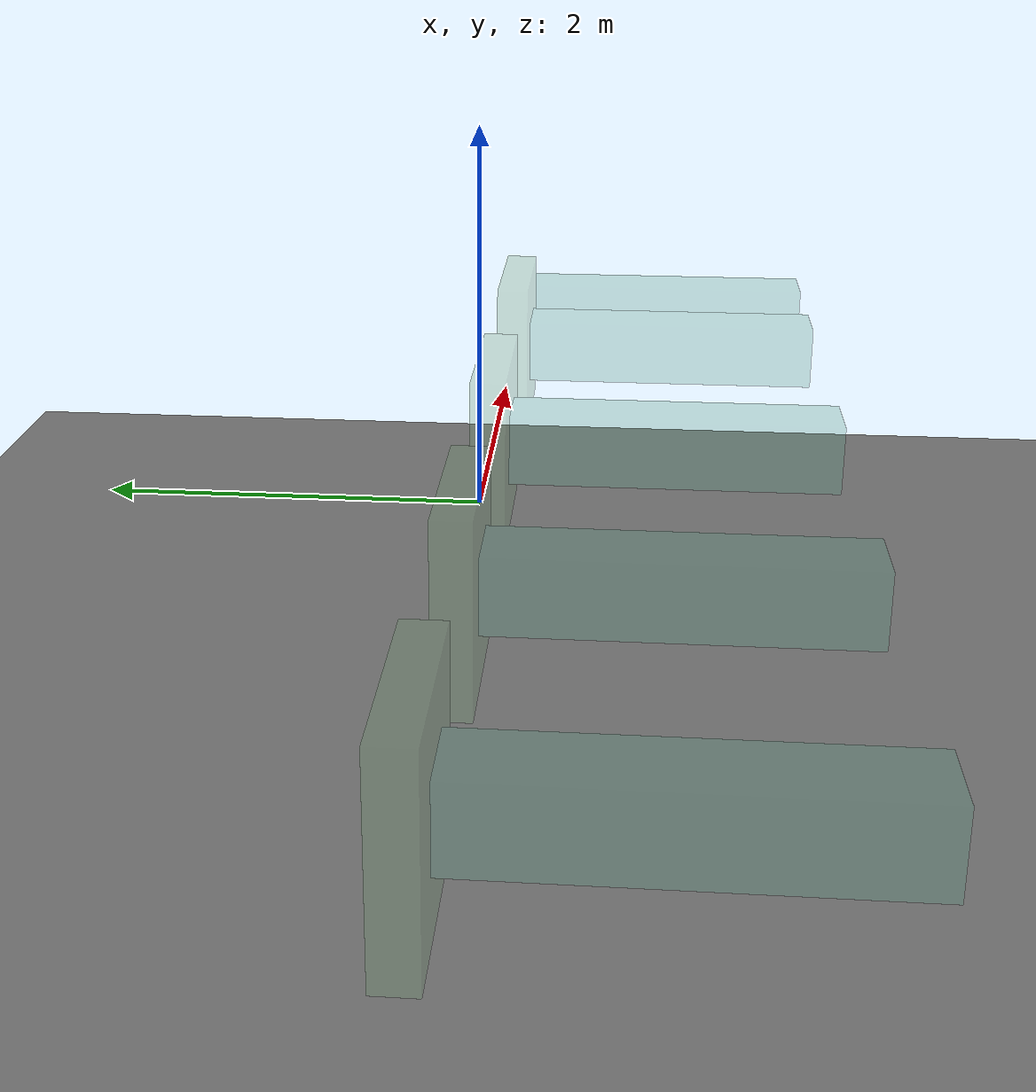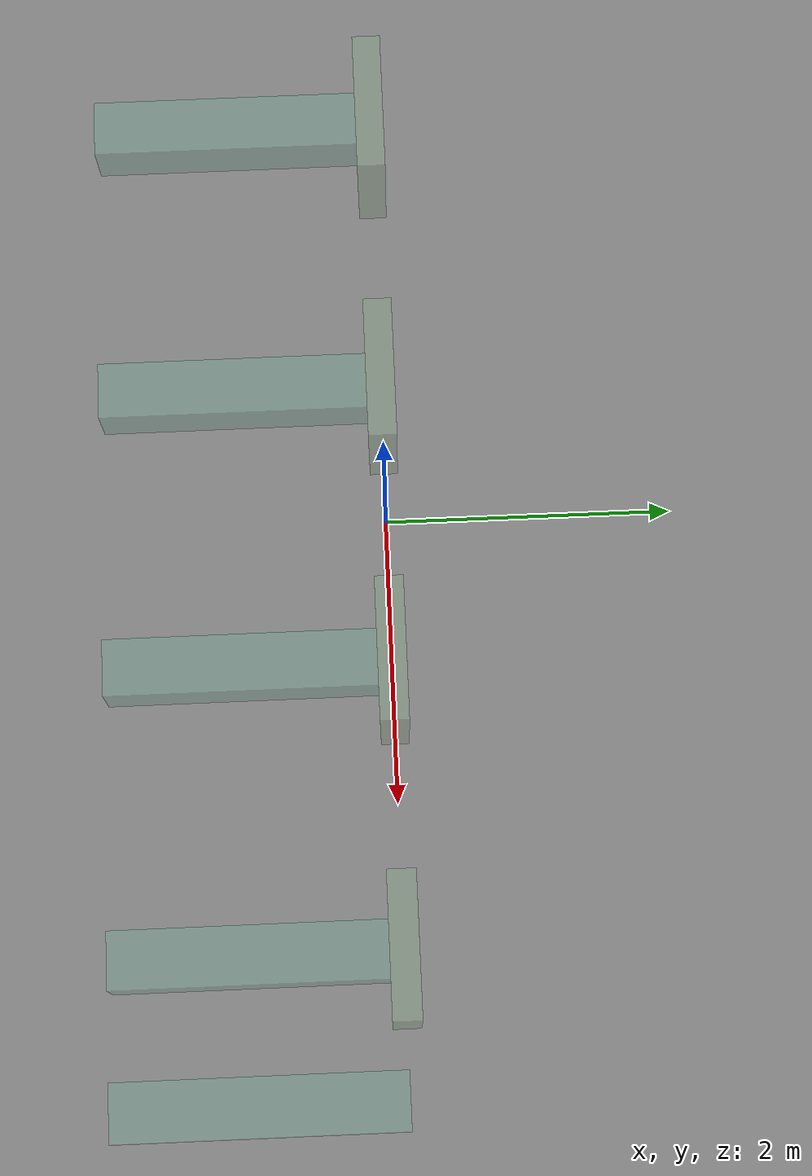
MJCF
<mujoco>
  <option solver="CG" iterations="8">
    <flag contact="disable"/>
  </option>

  <default>
    <default class="static">
      <geom size=".5 .1 .5" rgba=".5 .7 .5 .3"/>
    </default>
    <default class="free">
      <geom type="box" size=".2" fromto="0 0 0 0 -2 0" rgba=".4 .7 .6 .3"/>
    </default>
  </default>

  <worldbody>
    <geom pos="0 0 -2" type="plane" size="10 10 .01"/>
    <light pos="0 0 20"/>

    <body name="box1" pos="-3 0 0">
      <geom type="box" class="static"/>
    </body>
    <body name="beam1" pos="-3 0 0">
      <freejoint/>
      <geom class="free"/>
    </body>

    <body name="box2" pos="-1 0 0">
      <geom type="box" class="static"/>
    </body>
    <body name="beam2" pos="-1 0 0">
      <freejoint/>
      <geom class="free"/>
    </body>

    <body name="box3" pos="1 0 0">
      <geom type="box" class="static"/>
    </body>
    <body name="beam3" pos="1 0 0">
      <freejoint/>
      <geom class="free"/>
    </body>

    <body name="box4" pos="3 0 0">
      <geom type="box" class="static"/>
    </body>
    <body name="beam4" pos="3 0 0">
      <freejoint/>
      <geom class="free"/>
    </body>

    <body name="box5" pos="4 0 0">
      <geom class="free"/>
      <joint name="joint1" axis="1 0 0" type="hinge" />
    </body>

    <body name="box6" pos="4 0 0">
      <geom class="free"/>
      <joint name="joint2" axis="1 0 0" type="hinge" />
    </body>

  </worldbody>

  <equality>
    <connect name="connect anchor"           body1="box1"    body2="beam1"   anchor="0 0 -1" />
    <weld    name="weld anchor weak torques" body1="box2"    body2="beam2"   torquescale="0.002" anchor="0 -2 0"/>
    <weld    name="weld relpose"             body1="box3"    body2="beam3"   relpose="0 0 0 1 -.3 0 0"/>
    <weld    name="weld relpose+anchor"      body1="box4"    body2="beam4"   relpose="0 0 0 1 -.3 0 0" anchor="0 0 -1"/>
    <joint   name="joint"                    joint1="joint1" joint2="joint2" polycoef="0 -1 0.1 0.15 0.2" />
  </equality>
</mujoco>
